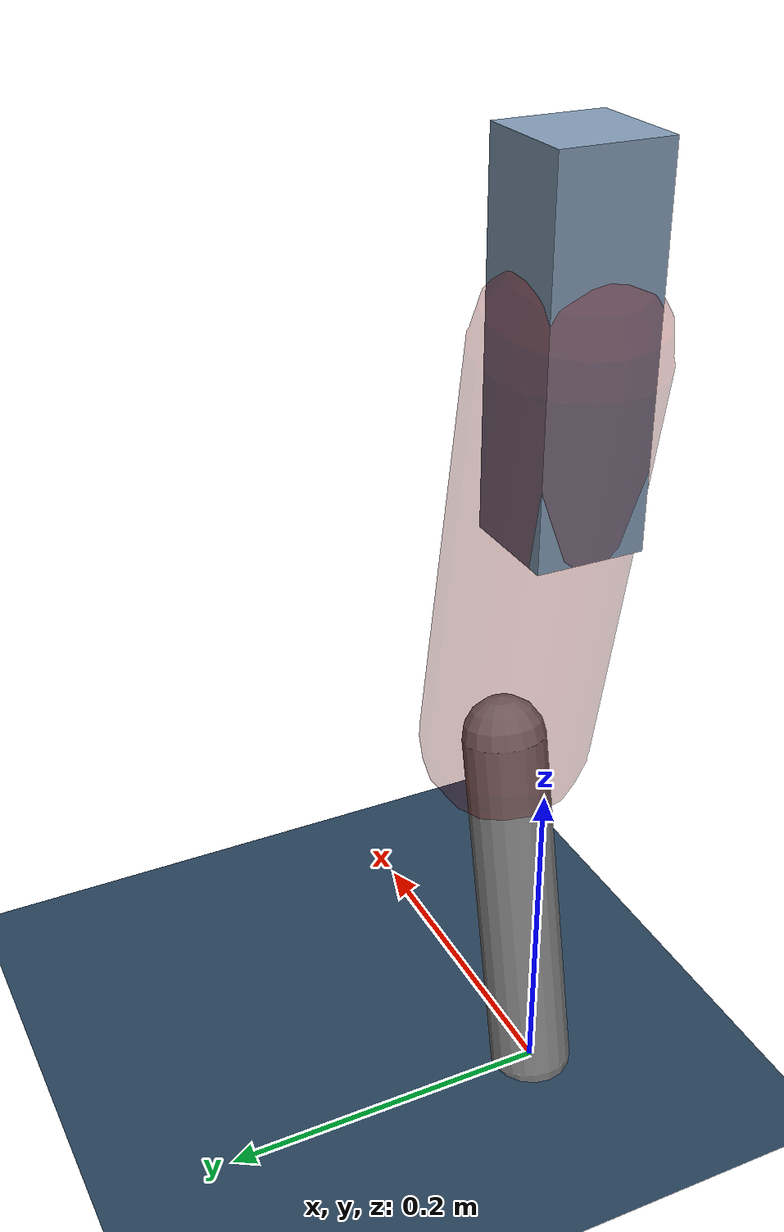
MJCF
<mujoco model="Hopper2D">
	<compiler inertiafromgeom="true" angle="radian" />
	<option timestep="0.001" integrator="implicit" cone="elliptic" solver="Newton" tolerance="1e-10" />

	<default>
		<geom contype="1" conaffinity="1" condim="3" friction="2 0.005 0.0001" solref="0.005 1" />
		<joint limited="true" damping="0.1" />
	</default>

	<asset>
		<texture name="skybox" type="skybox" builtin="gradient" rgb1=".4 .6 .8" rgb2="0 0 0" width="800" height="800" />
		<texture name="grid" type="2d" builtin="checker" rgb1=".1 .2 .3" rgb2=".2 .3 .4" width="300" height="300" mark="edge" markrgb=".2 .3 .4" />
		<material name="ground" texture="grid" texrepeat="1 1" texuniform="true" reflectance="0.1" />
		<material name="leg" rgba="0.5 0.6 0.7 1" />
	</asset>

	<worldbody>

		<geom name="floor" type="plane" size="5 5 0.25" material="ground" />

		<light directional="false" diffuse="0.8 0.8 0.8" specular="0.3 0.3 0.3" pos="0 0 2" dir="0 0 -1" />
		<light mode="targetbodycom" target="base" directional="false" diffuse="0.8 0.8 0.8" specular="0.3 0.3 0.3" pos="0 0 2" dir="0 0 -1" />

		<camera name="fixed" pos="0 -2 1" xyaxes="1 0 0 0 0 1" />
		<camera name="tracking" mode="trackcom" pos="0 -3 1" />

		<body name="root" pos="0 0 0.4635388649410449">
			<joint name="slide_x" type="slide" axis="1 0 0" range="-100 100" />
			<joint name="slide_z" type="slide" axis="0 0 1" range="0 10" />

			<body name="base" pos="0 0 0">
				<geom name="torso" type="box" size="0.03 0.03 0.1" mass="3.136" material="leg" />

				<body name="link1" pos="0 0 0" euler="0 1.3802084952861482 0">
					<joint type="hinge" axis="0 -1 0" pos="0 0 0" name="hinge1" limited="true" range="-3.14 3.14" stiffness="0" damping="0.1" />
					<geom name="thigh" type="capsule" fromto="0 0 0 0.2547337779695864 0 0" size="0.05" rgba="0.5 0 0 0.3" mass="0.8687078227209246" />

					<body name="link2" pos="0.2547337779695864 0 0" euler="0 0.41295825800077546 0">
						<joint type="hinge" axis="0 -1 0" pos="0 0 0" name="hinge2" limited="true" range="-3.14 3.14" stiffness="0" damping="0.1" />
						<geom name="shank" type="capsule" fromto="0 0 0 0.2188050869714585 0 0" size="0.025" mass="0.4166440695771668" />

					</body>
				</body>
			</body>
		</body>
	</worldbody>

	<actuator>
		<motor name="torque1" joint="hinge1" ctrlrange="-126.76050683160636 126.76050683160636" ctrllimited="true" gear="1" />
		<motor name="torque2" joint="hinge2" ctrlrange="-131.65120544475255 131.65120544475255" ctrllimited="true" gear="1" />
	</actuator>
</mujoco>
